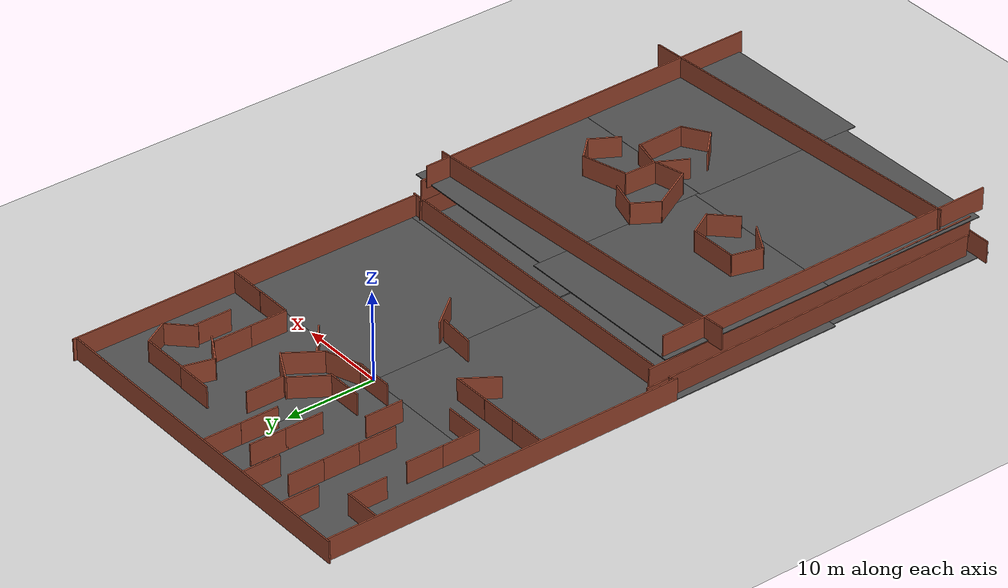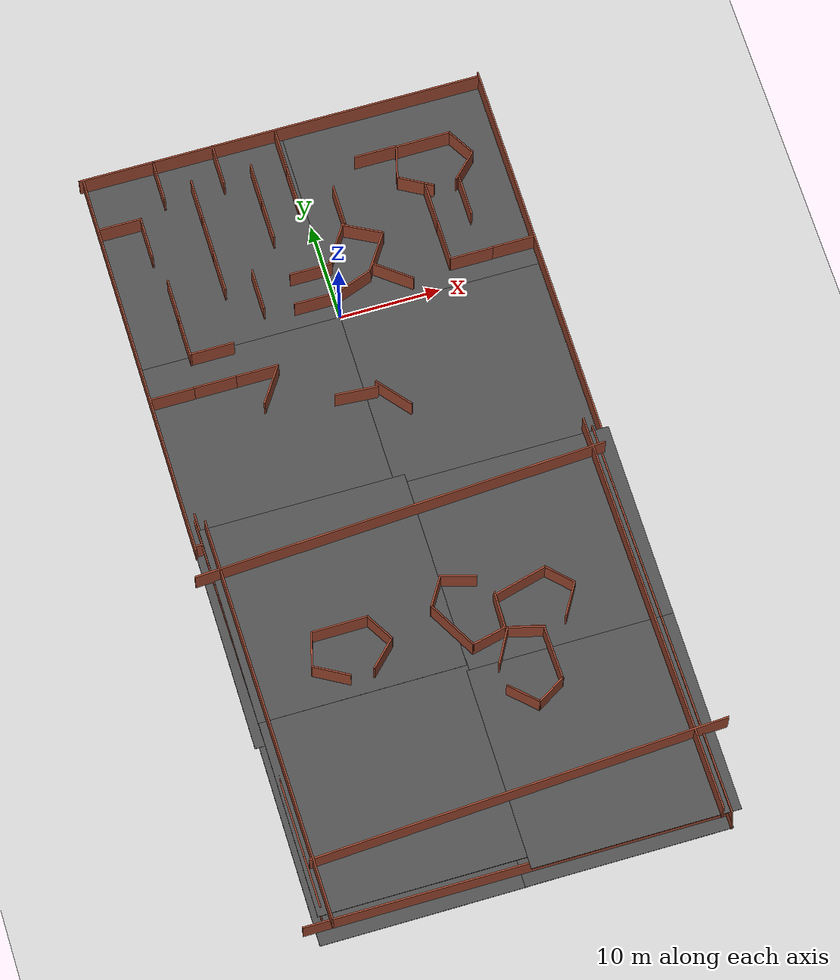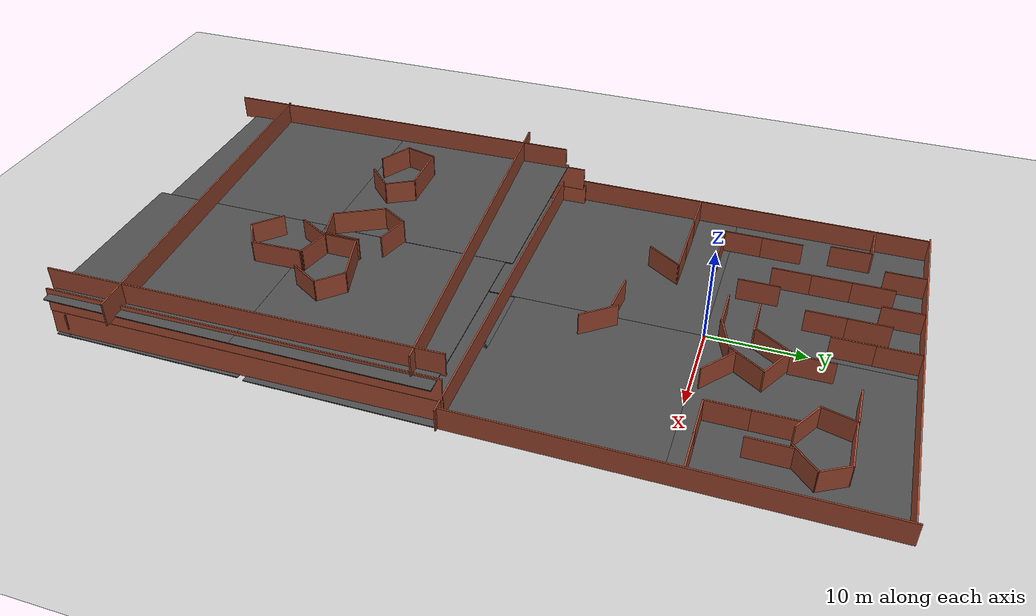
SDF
<sdf version="1.6">
 <world name="default">
  <light name="sun" type="directional">
   <pose>0 0 10 0 -0 0</pose>
   <diffuse>0.8 0.8 0.8 1</diffuse>
   <specular>0.2 0.2 0.2 1</specular>
   <attenuation>
    <range>1000</range>
    <constant>0.9</constant>
    <linear>0.01</linear>
    <quadratic>0.001</quadratic>
   </attenuation>
   <direction>-0.5 0.1 -0.9</direction>
  </light>
  <model name="ground_plane">
   <static>1</static>
   <link name="link">
    <collision name="collision">
     <geometry><plane><normal>0 0 1</normal><size>100 100</size></plane></geometry>
     <surface><friction><ode><mu>100</mu><mu2>50</mu2></ode></friction></surface>
    </collision>
    <visual name="visual">
     <cast_shadows>0</cast_shadows>
     <geometry><plane><normal>0 0 1</normal><size>100 100</size></plane></geometry>
     <material>
      <script><uri>file://media/materials/scripts/gazebo.material</uri><name>Gazebo/Grey</name></script>
     </material>
    </visual>
   </link>
  </model>
  <physics name="default_physics" default="0" type="ode">
   <max_step_size>0.001</max_step_size>
   <real_time_factor>1</real_time_factor>
   <real_time_update_rate>1000</real_time_update_rate>
  </physics>
  <scene><ambient>0.4 0.4 0.4 1</ambient><background>0.7 0.7 0.7 1</background><shadows>1</shadows></scene>
  <spherical_coordinates>
   <surface_model>EARTH_WGS84</surface_model>
   <latitude_deg>0</latitude_deg>
   <longitude_deg>0</longitude_deg>
   <elevation>0</elevation>
   <heading_deg>0</heading_deg>
  </spherical_coordinates>
  <model name="asphalt_plane">
   <static>1</static>
   <link name="link">
    <collision name="collision"><geometry><box><size>20 20 0.1</size></box></geometry></collision>
    <visual name="visual">
     <cast_shadows>0</cast_shadows>
     <geometry><box><size>20 20 0.1</size></box></geometry>
     <material>
      <script>
       <uri>model://asphalt_plane/materials/scripts</uri>
       <uri>model://asphalt_plane/materials/textures</uri>
       <name>vrc/asphalt</name>
      </script>
     </material>
    </visual>
   </link>
   <pose>10 10 0 0 -0 0</pose>
  </model>
  <model name="asphalt_plane_0">
   <static>1</static>
   <link name="link">
    <collision name="collision"><geometry><box><size>20 20 0.1</size></box></geometry></collision>
    <visual name="visual">
     <cast_shadows>0</cast_shadows>
     <geometry><box><size>20 20 0.1</size></box></geometry>
     <material>
      <script>
       <uri>model://asphalt_plane/materials/scripts</uri>
       <uri>model://asphalt_plane/materials/textures</uri>
       <name>vrc/asphalt</name>
      </script>
     </material>
    </visual>
   </link>
   <pose>-10 10 0 0 -0 0</pose>
  </model>
  <model name="asphalt_plane_1">
   <static>1</static>
   <link name="link">
    <collision name="collision"><geometry><box><size>20 20 0.1</size></box></geometry></collision>
    <visual name="visual">
     <cast_shadows>0</cast_shadows>
     <geometry><box><size>20 20 0.1</size></box></geometry>
     <material>
      <script>
       <uri>model://asphalt_plane/materials/scripts</uri>
       <uri>model://asphalt_plane/materials/textures</uri>
       <name>vrc/asphalt</name>
      </script>
     </material>
    </visual>
   </link>
   <pose>-10 -10 0 0 -0 0</pose>
  </model>
  <model name="asphalt_plane_2">
   <static>1</static>
   <link name="link">
    <collision name="collision"><geometry><box><size>20 20 0.1</size></box></geometry></collision>
    <visual name="visual">
     <cast_shadows>0</cast_shadows>
     <geometry><box><size>20 20 0.1</size></box></geometry>
     <material>
      <script>
       <uri>model://asphalt_plane/materials/scripts</uri>
       <uri>model://asphalt_plane/materials/textures</uri>
       <name>vrc/asphalt</name>
      </script>
     </material>
    </visual>
   </link>
   <pose>10 -10 0 0 -0 0</pose>
  </model>
  <model name="longwall">
   <pose>0.229981 -20.0786 0 0 -0 0</pose>
   <link name="Wall_0">
    <collision name="Wall_0_Collision">
     <geometry><box><size>40.5 0.15 2.5</size></box></geometry>
     <pose>0 0 1.25 0 -0 0</pose>
    </collision>
    <visual name="Wall_0_Visual">
     <pose>0 0 1.25 0 -0 0</pose>
     <geometry><box><size>40.5 0.15 2.5</size></box></geometry>
     <material>
      <script><uri>file://media/materials/scripts/gazebo.material</uri><name>Gazebo/Bricks</name></script>
      <ambient>1 1 1 1</ambient>
     </material>
    </visual>
    <pose>1e-06 0 0 0 -0 0</pose>
   </link>
   <static>1</static>
  </model>
  <model name="longwall_0">
   <pose>-20.0177 -0.255752 0 0 0 -1.57092</pose>
   <link name="Wall_0">
    <collision name="Wall_0_Collision">
     <geometry><box><size>40.5 0.15 2.5</size></box></geometry>
     <pose>0 0 1.25 0 -0 0</pose>
    </collision>
    <visual name="Wall_0_Visual">
     <pose>0 0 1.25 0 -0 0</pose>
     <geometry><box><size>40.5 0.15 2.5</size></box></geometry>
     <material>
      <script><uri>file://media/materials/scripts/gazebo.material</uri><name>Gazebo/Bricks</name></script>
      <ambient>1 1 1 1</ambient>
     </material>
    </visual>
    <pose>1e-06 0 0 0 -0 0</pose>
   </link>
   <static>1</static>
  </model>
  <model name="longwall_0_clone">
   <pose>20.1053 0.258056 0 0 0 -1.57092</pose>
   <link name="Wall_0">
    <collision name="Wall_0_Collision">
     <geometry><box><size>40.5 0.15 2.5</size></box></geometry>
     <pose>0 0 1.25 0 -0 0</pose>
    </collision>
    <visual name="Wall_0_Visual">
     <pose>0 0 1.25 0 -0 0</pose>
     <geometry><box><size>40.5 0.15 2.5</size></box></geometry>
     <material>
      <script><uri>file://media/materials/scripts/gazebo.material</uri><name>Gazebo/Bricks</name></script>
      <ambient>1 1 1 1</ambient>
     </material>
    </visual>
    <pose>1e-06 0 0 0 -0 0</pose>
   </link>
   <static>1</static>
  </model>
  <model name="longwall_clone">
   <pose>-0.214439 20.0862 0 0 -0 0</pose>
   <link name="Wall_0">
    <collision name="Wall_0_Collision">
     <geometry><box><size>40.5 0.15 2.5</size></box></geometry>
     <pose>0 0 1.25 0 -0 0</pose>
    </collision>
    <visual name="Wall_0_Visual">
     <pose>0 0 1.25 0 -0 0</pose>
     <geometry><box><size>40.5 0.15 2.5</size></box></geometry>
     <material>
      <script><uri>file://media/materials/scripts/gazebo.material</uri><name>Gazebo/Bricks</name></script>
      <ambient>1 1 1 1</ambient>
     </material>
    </visual>
    <pose>1e-06 0 0 0 -0 0</pose>
   </link>
   <static>1</static>
  </model>
  <model name="room1">
   <pose>13.1523 12.4323 0 0 -0 0</pose>
   <link name="Wall_11">
    <collision name="Wall_11_Collision">
     <geometry><box><size>3.25 0.15 2.5</size></box></geometry>
     <pose>0 0 1.25 0 -0 0</pose>
    </collision>
    <visual name="Wall_11_Visual">
     <pose>0 0 1.25 0 -0 0</pose>
     <geometry><box><size>3.25 0.15 2.5</size></box></geometry>
     <material>
      <script><uri>file://media/materials/scripts/gazebo.material</uri><name>Gazebo/Bricks</name></script>
      <ambient>1 1 1 1</ambient>
     </material>
    </visual>
    <pose>3.12132 1.19483 0 0 0 -1.0472</pose>
   </link>
   <link name="Wall_12">
    <collision name="Wall_12_Collision">
     <geometry><box><size>3.5 0.15 2.5</size></box></geometry>
     <pose>0 0 1.25 0 -0 0</pose>
    </collision>
    <visual name="Wall_12_Visual">
     <pose>0 0 1.25 0 -0 0</pose>
     <geometry><box><size>3.5 0.15 2.5</size></box></geometry>
     <material>
      <script><uri>file://media/materials/scripts/gazebo.material</uri><name>Gazebo/Bricks</name></script>
      <ambient>1 1 1 1</ambient>
     </material>
    </visual>
    <pose>2.71192 -1.33192 0 0 0 -2.35619</pose>
   </link>
   <link name="Wall_7">
    <collision name="Wall_7_Collision">
     <geometry><box><size>5.52935 0.15 2.5</size></box></geometry>
     <pose>0 0 1.25 0 -0 0</pose>
    </collision>
    <visual name="Wall_7_Visual">
     <pose>0 0 1.25 0 -0 0</pose>
     <geometry><box><size>5.52935 0.15 2.5</size></box></geometry>
     <material>
      <script><uri>file://media/materials/scripts/gazebo.material</uri><name>Gazebo/Bricks</name></script>
      <ambient>1 1 1 1</ambient>
     </material>
    </visual>
    <pose>-0.343285 2.51793 0 0 0 -3.13444</pose>
   </link>
   <link name="Wall_8">
    <collision name="Wall_8_Collision">
     <geometry><box><size>3.5 0.15 2.5</size></box></geometry>
     <pose>0 0 1.25 0 -0 0</pose>
    </collision>
    <visual name="Wall_8_Visual">
     <pose>0 0 1.25 0 -0 0</pose>
     <geometry><box><size>3.5 0.15 2.5</size></box></geometry>
     <material>
      <script><uri>file://media/materials/scripts/gazebo.material</uri><name>Gazebo/Bricks</name></script>
      <ambient>1 1 1 1</ambient>
     </material>
    </visual>
    <pose>-3.46641 0.880761 0 0 0 -1.8326</pose>
   </link>
   <link name="Wall_9">
    <collision name="Wall_9_Collision">
     <geometry><box><size>3.75 0.15 2.5</size></box></geometry>
     <pose>0 0 1.25 0 -0 0</pose>
    </collision>
    <visual name="Wall_9_Visual">
     <pose>0 0 1.25 0 -0 0</pose>
     <geometry><box><size>3.75 0.15 2.5</size></box></geometry>
     <material>
      <script><uri>file://media/materials/scripts/gazebo.material</uri><name>Gazebo/Bricks</name></script>
      <ambient>1 1 1 1</ambient>
     </material>
    </visual>
    <pose>-2.34109 -1.63716 0 0 0 -0.523599</pose>
   </link>
   <static>1</static>
  </model>
  <model name="worlds_1">
   <pose>3 10.4406 0 0 -0 0</pose>
   <link name="Wall_0">
    <collision name="Wall_0_Collision">
     <geometry><box><size>4.25 0.15 2.5</size></box></geometry>
     <pose>0 0 1.25 0 -0 0</pose>
    </collision>
    <visual name="Wall_0_Visual">
     <pose>0 0 1.25 0 -0 0</pose>
     <geometry><box><size>4.25 0.15 2.5</size></box></geometry>
     <material>
      <script><uri>file://media/materials/scripts/gazebo.material</uri><name>Gazebo/Bricks</name></script>
      <ambient>1 1 1 1</ambient>
     </material>
    </visual>
    <pose>0 -0 0 0 -0 1.5708</pose>
   </link>
   <static>1</static>
  </model>
  <model name="worlds_2">
   <pose>4.42901 7.33195 0 0 -0 1.08023</pose>
   <link name="Wall_0">
    <collision name="Wall_0_Collision">
     <geometry><box><size>4.25 0.15 2.5</size></box></geometry>
     <pose>0 0 1.25 0 -0 0</pose>
    </collision>
    <visual name="Wall_0_Visual">
     <pose>0 0 1.25 0 -0 0</pose>
     <geometry><box><size>4.25 0.15 2.5</size></box></geometry>
     <material>
      <script><uri>file://media/materials/scripts/gazebo.material</uri><name>Gazebo/Bricks</name></script>
      <ambient>1 1 1 1</ambient>
     </material>
    </visual>
    <pose>0 -0 0 0 -0 1.5708</pose>
   </link>
   <static>1</static>
  </model>
  <model name="worlds_0_clone">
   <pose>-1 -9 0 0 -0 1.49697</pose>
   <link name="Wall_0">
    <collision name="Wall_0_Collision">
     <geometry><box><size>4.25 0.15 2.5</size></box></geometry>
     <pose>0 0 1.25 0 -0 0</pose>
    </collision>
    <visual name="Wall_0_Visual">
     <pose>0 0 1.25 0 -0 0</pose>
     <geometry><box><size>4.25 0.15 2.5</size></box></geometry>
     <material>
      <script><uri>file://media/materials/scripts/gazebo.material</uri><name>Gazebo/Bricks</name></script>
      <ambient>1 1 1 1</ambient>
     </material>
    </visual>
    <pose>0 -0 0 0 -0 1.5708</pose>
   </link>
   <static>1</static>
  </model>
  <model name="worlds_2_clone">
   <pose>2.34689 -10.1873 0 0 -0 0.67691</pose>
   <link name="Wall_0">
    <collision name="Wall_0_Collision">
     <geometry><box><size>4.25 0.15 2.5</size></box></geometry>
     <pose>0 0 1.25 0 -0 0</pose>
    </collision>
    <visual name="Wall_0_Visual">
     <pose>0 0 1.25 0 -0 0</pose>
     <geometry><box><size>4.25 0.15 2.5</size></box></geometry>
     <material>
      <script><uri>file://media/materials/scripts/gazebo.material</uri><name>Gazebo/Bricks</name></script>
      <ambient>1 1 1 1</ambient>
     </material>
    </visual>
    <pose>0 -0 0 0 -0 1.5708</pose>
   </link>
   <static>1</static>
  </model>
  <model name="worlds_1_clone">
   <pose>11.6021 8.07399 0 0 -0 0</pose>
   <link name="Wall_0">
    <collision name="Wall_0_Collision">
     <geometry><box><size>4.25 0.15 2.5</size></box></geometry>
     <pose>0 0 1.25 0 -0 0</pose>
    </collision>
    <visual name="Wall_0_Visual">
     <pose>0 0 1.25 0 -0 0</pose>
     <geometry><box><size>4.25 0.15 2.5</size></box></geometry>
     <material>
      <script><uri>file://media/materials/scripts/gazebo.material</uri><name>Gazebo/Bricks</name></script>
      <ambient>1 1 1 1</ambient>
     </material>
    </visual>
    <pose>0 -0 0 0 -0 1.5708</pose>
   </link>
   <static>1</static>
  </model>
  <model name="worlds_1_clone_0">
   <pose>11.6134 3.89135 0 0 -0 0</pose>
   <link name="Wall_0">
    <collision name="Wall_0_Collision">
     <geometry><box><size>4.25 0.15 2.5</size></box></geometry>
     <pose>0 0 1.25 0 -0 0</pose>
    </collision>
    <visual name="Wall_0_Visual">
     <pose>0 0 1.25 0 -0 0</pose>
     <geometry><box><size>4.25 0.15 2.5</size></box></geometry>
     <material>
      <script><uri>file://media/materials/scripts/gazebo.material</uri><name>Gazebo/Bricks</name></script>
      <ambient>1 1 1 1</ambient>
     </material>
    </visual>
    <pose>0 -0 0 0 -0 1.5708</pose>
   </link>
   <static>1</static>
  </model>
  <model name="worlds_1_clone_0_clone">
   <pose>13.736 1.79456 0 0 0 -1.57092</pose>
   <link name="Wall_0">
    <collision name="Wall_0_Collision">
     <geometry><box><size>4.25 0.15 2.5</size></box></geometry>
     <pose>0 0 1.25 0 -0 0</pose>
    </collision>
    <visual name="Wall_0_Visual">
     <pose>0 0 1.25 0 -0 0</pose>
     <geometry><box><size>4.25 0.15 2.5</size></box></geometry>
     <material>
      <script><uri>file://media/materials/scripts/gazebo.material</uri><name>Gazebo/Bricks</name></script>
      <ambient>1 1 1 1</ambient>
     </material>
    </visual>
    <pose>0 -0 0 0 -0 1.5708</pose>
   </link>
   <static>1</static>
  </model>
  <model name="worlds_1_clone_0_clone_clone">
   <pose>17.9203 1.82357 0 0 0 -1.57092</pose>
   <link name="Wall_0">
    <collision name="Wall_0_Collision">
     <geometry><box><size>4.25 0.15 2.5</size></box></geometry>
     <pose>0 0 1.25 0 -0 0</pose>
    </collision>
    <visual name="Wall_0_Visual">
     <pose>0 0 1.25 0 -0 0</pose>
     <geometry><box><size>4.25 0.15 2.5</size></box></geometry>
     <material>
      <script><uri>file://media/materials/scripts/gazebo.material</uri><name>Gazebo/Bricks</name></script>
      <ambient>1 1 1 1</ambient>
     </material>
    </visual>
    <pose>0 -0 0 0 -0 1.5708</pose>
   </link>
   <static>1</static>
  </model>
  <model name="worlds_1_clone_0_clone_clone_0">
   <pose>8 15 0 0 0 -1.57092</pose>
   <link name="Wall_0">
    <collision name="Wall_0_Collision">
     <geometry><box><size>4.25 0.15 2.5</size></box></geometry>
     <pose>0 0 1.25 0 -0 0</pose>
    </collision>
    <visual name="Wall_0_Visual">
     <pose>0 0 1.25 0 -0 0</pose>
     <geometry><box><size>4.25 0.15 2.5</size></box></geometry>
     <material>
      <script><uri>file://media/materials/scripts/gazebo.material</uri><name>Gazebo/Bricks</name></script>
      <ambient>1 1 1 1</ambient>
     </material>
    </visual>
    <pose>0 -0 0 0 -0 1.5708</pose>
   </link>
   <static>1</static>
  </model>
  <model name="worlds_1_clone_0_clone_clone_0_clone">
   <pose>-17.8162 14.4688 0 0 0 -1.57092</pose>
   <link name="Wall_0">
    <collision name="Wall_0_Collision">
     <geometry><box><size>4.25 0.15 2.5</size></box></geometry>
     <pose>0 0 1.25 0 -0 0</pose>
    </collision>
    <visual name="Wall_0_Visual">
     <pose>0 0 1.25 0 -0 0</pose>
     <geometry><box><size>4.25 0.15 2.5</size></box></geometry>
     <material>
      <script><uri>file://media/materials/scripts/gazebo.material</uri><name>Gazebo/Bricks</name></script>
      <ambient>1 1 1 1</ambient>
     </material>
    </visual>
    <pose>0 -0 0 0 -0 1.5708</pose>
   </link>
   <static>1</static>
  </model>
  <model name="worlds_1_clone_1">
   <pose>-13 18 0 0 -0 0</pose>
   <link name="Wall_0">
    <collision name="Wall_0_Collision">
     <geometry><box><size>4.25 0.15 2.5</size></box></geometry>
     <pose>0 0 1.25 0 -0 0</pose>
    </collision>
    <visual name="Wall_0_Visual">
     <pose>0 0 1.25 0 -0 0</pose>
     <geometry><box><size>4.25 0.15 2.5</size></box></geometry>
     <material>
      <script><uri>file://media/materials/scripts/gazebo.material</uri><name>Gazebo/Bricks</name></script>
      <ambient>1 1 1 1</ambient>
     </material>
    </visual>
    <pose>0 -0 0 0 -0 1.5708</pose>
   </link>
   <static>1</static>
  </model>
  <model name="worlds_1_clone_1_clone">
   <pose>-15.7734 12.3225 0 0 -0 0</pose>
   <link name="Wall_0">
    <collision name="Wall_0_Collision">
     <geometry><box><size>4.25 0.15 2.5</size></box></geometry>
     <pose>0 0 1.25 0 -0 0</pose>
    </collision>
    <visual name="Wall_0_Visual">
     <pose>0 0 1.25 0 -0 0</pose>
     <geometry><box><size>4.25 0.15 2.5</size></box></geometry>
     <material>
      <script><uri>file://media/materials/scripts/gazebo.material</uri><name>Gazebo/Bricks</name></script>
      <ambient>1 1 1 1</ambient>
     </material>
    </visual>
    <pose>0 -0 0 0 -0 1.5708</pose>
   </link>
   <static>1</static>
  </model>
  <model name="worlds_1_clone_1_clone_clone">
   <pose>-15.0638 5.287 0 0 -0 0</pose>
   <link name="Wall_0">
    <collision name="Wall_0_Collision">
     <geometry><box><size>4.25 0.15 2.5</size></box></geometry>
     <pose>0 0 1.25 0 -0 0</pose>
    </collision>
    <visual name="Wall_0_Visual">
     <pose>0 0 1.25 0 -0 0</pose>
     <geometry><box><size>4.25 0.15 2.5</size></box></geometry>
     <material>
      <script><uri>file://media/materials/scripts/gazebo.material</uri><name>Gazebo/Bricks</name></script>
      <ambient>1 1 1 1</ambient>
     </material>
    </visual>
    <pose>0 -0 0 0 -0 1.5708</pose>
   </link>
   <static>1</static>
  </model>
  <model name="worlds_1_clone_1_clone_clone_0">
   <pose>-15.0769 1.18275 0 0 -0 0</pose>
   <link name="Wall_0">
    <collision name="Wall_0_Collision">
     <geometry><box><size>4.25 0.15 2.5</size></box></geometry>
     <pose>0 0 1.25 0 -0 0</pose>
    </collision>
    <visual name="Wall_0_Visual">
     <pose>0 0 1.25 0 -0 0</pose>
     <geometry><box><size>4.25 0.15 2.5</size></box></geometry>
     <material>
      <script><uri>file://media/materials/scripts/gazebo.material</uri><name>Gazebo/Bricks</name></script>
      <ambient>1 1 1 1</ambient>
     </material>
    </visual>
    <pose>0 -0 0 0 -0 1.5708</pose>
   </link>
   <static>1</static>
  </model>
  <model name="worlds_1_clone_0_clone_clone_0_clone_clone">
   <pose>-17.8054 -4.32089 0 0 0 -1.57092</pose>
   <link name="Wall_0">
    <collision name="Wall_0_Collision">
     <geometry><box><size>4.25 0.15 2.5</size></box></geometry>
     <pose>0 0 1.25 0 -0 0</pose>
    </collision>
    <visual name="Wall_0_Visual">
     <pose>0 0 1.25 0 -0 0</pose>
     <geometry><box><size>4.25 0.15 2.5</size></box></geometry>
     <material>
      <script><uri>file://media/materials/scripts/gazebo.material</uri><name>Gazebo/Bricks</name></script>
      <ambient>1 1 1 1</ambient>
     </material>
    </visual>
    <pose>0 -0 0 0 -0 1.5708</pose>
   </link>
   <static>1</static>
  </model>
  <model name="worlds_1_clone_0_clone_clone_0_clone_clone_0">
   <pose>-13.6699 -4.29855 0 0 0 -1.57092</pose>
   <link name="Wall_0">
    <collision name="Wall_0_Collision">
     <geometry><box><size>4.25 0.15 2.5</size></box></geometry>
     <pose>0 0 1.25 0 -0 0</pose>
    </collision>
    <visual name="Wall_0_Visual">
     <pose>0 0 1.25 0 -0 0</pose>
     <geometry><box><size>4.25 0.15 2.5</size></box></geometry>
     <material>
      <script><uri>file://media/materials/scripts/gazebo.material</uri><name>Gazebo/Bricks</name></script>
      <ambient>1 1 1 1</ambient>
     </material>
    </visual>
    <pose>0 -0 0 0 -0 1.5708</pose>
   </link>
   <static>1</static>
  </model>
  <model name="worlds_1_clone_0_clone_clone_0_clone_clone_1">
   <pose>-9.47339 -4.28892 0 0 0 -1.57092</pose>
   <link name="Wall_0">
    <collision name="Wall_0_Collision">
     <geometry><box><size>4.25 0.15 2.5</size></box></geometry>
     <pose>0 0 1.25 0 -0 0</pose>
    </collision>
    <visual name="Wall_0_Visual">
     <pose>0 0 1.25 0 -0 0</pose>
     <geometry><box><size>4.25 0.15 2.5</size></box></geometry>
     <material>
      <script><uri>file://media/materials/scripts/gazebo.material</uri><name>Gazebo/Bricks</name></script>
      <ambient>1 1 1 1</ambient>
     </material>
    </visual>
    <pose>0 -0 0 0 -0 1.5708</pose>
   </link>
   <static>1</static>
  </model>
  <model name="worlds_1_clone_1_clone_0">
   <pose>-0.708445 17.9147 0 0 -0 0</pose>
   <link name="Wall_0">
    <collision name="Wall_0_Collision">
     <geometry><box><size>4.25 0.15 2.5</size></box></geometry>
     <pose>0 0 1.25 0 -0 0</pose>
    </collision>
    <visual name="Wall_0_Visual">
     <pose>0 0 1.25 0 -0 0</pose>
     <geometry><box><size>4.25 0.15 2.5</size></box></geometry>
     <material>
      <script><uri>file://media/materials/scripts/gazebo.material</uri><name>Gazebo/Bricks</name></script>
      <ambient>1 1 1 1</ambient>
     </material>
    </visual>
    <pose>0 -0 0 0 -0 1.5708</pose>
   </link>
   <static>1</static>
  </model>
  <model name="worlds_1_clone_1_clone_1">
   <pose>-0.716318 13.714 0 0 -0 0</pose>
   <link name="Wall_0">
    <collision name="Wall_0_Collision">
     <geometry><box><size>4.25 0.15 2.5</size></box></geometry>
     <pose>0 0 1.25 0 -0 0</pose>
    </collision>
    <visual name="Wall_0_Visual">
     <pose>0 0 1.25 0 -0 0</pose>
     <geometry><box><size>4.25 0.15 2.5</size></box></geometry>
     <material>
      <script><uri>file://media/materials/scripts/gazebo.material</uri><name>Gazebo/Bricks</name></script>
      <ambient>1 1 1 1</ambient>
     </material>
    </visual>
    <pose>0 -0 0 0 -0 1.5708</pose>
   </link>
   <static>1</static>
  </model>
  <model name="worlds_1_clone_1_clone_2">
   <pose>-7 18 0 0 -0 0</pose>
   <link name="Wall_0">
    <collision name="Wall_0_Collision">
     <geometry><box><size>4.25 0.15 2.5</size></box></geometry>
     <pose>0 0 1.25 0 -0 0</pose>
    </collision>
    <visual name="Wall_0_Visual">
     <pose>0 0 1.25 0 -0 0</pose>
     <geometry><box><size>4.25 0.15 2.5</size></box></geometry>
     <material>
      <script><uri>file://media/materials/scripts/gazebo.material</uri><name>Gazebo/Bricks</name></script>
      <ambient>1 1 1 1</ambient>
     </material>
    </visual>
    <pose>0 -0 0 0 -0 1.5708</pose>
   </link>
   <static>1</static>
  </model>
  <model name="worlds_1_clone_1_clone_3">
   <pose>-10 15 0 0 -0 0</pose>
   <link name="Wall_0">
    <collision name="Wall_0_Collision">
     <geometry><box><size>4.25 0.15 2.5</size></box></geometry>
     <pose>0 0 1.25 0 -0 0</pose>
    </collision>
    <visual name="Wall_0_Visual">
     <pose>0 0 1.25 0 -0 0</pose>
     <geometry><box><size>4.25 0.15 2.5</size></box></geometry>
     <material>
      <script><uri>file://media/materials/scripts/gazebo.material</uri><name>Gazebo/Bricks</name></script>
      <ambient>1 1 1 1</ambient>
     </material>
    </visual>
    <pose>0 -0 0 0 -0 1.5708</pose>
   </link>
   <static>1</static>
  </model>
  <model name="worlds_1_clone_1_clone_4">
   <pose>-10 11 0 0 -0 0</pose>
   <link name="Wall_0">
    <collision name="Wall_0_Collision">
     <geometry><box><size>4.25 0.15 2.5</size></box></geometry>
     <pose>0 0 1.25 0 -0 0</pose>
    </collision>
    <visual name="Wall_0_Visual">
     <pose>0 0 1.25 0 -0 0</pose>
     <geometry><box><size>4.25 0.15 2.5</size></box></geometry>
     <material>
      <script><uri>file://media/materials/scripts/gazebo.material</uri><name>Gazebo/Bricks</name></script>
      <ambient>1 1 1 1</ambient>
     </material>
    </visual>
    <pose>0 -0 0 0 -0 1.5708</pose>
   </link>
   <static>1</static>
  </model>
  <model name="worlds_1_clone_1_clone_5">
   <pose>-4 15 0 0 -0 0</pose>
   <link name="Wall_0">
    <collision name="Wall_0_Collision">
     <geometry><box><size>4.25 0.15 2.5</size></box></geometry>
     <pose>0 0 1.25 0 -0 0</pose>
    </collision>
    <visual name="Wall_0_Visual">
     <pose>0 0 1.25 0 -0 0</pose>
     <geometry><box><size>4.25 0.15 2.5</size></box></geometry>
     <material>
      <script><uri>file://media/materials/scripts/gazebo.material</uri><name>Gazebo/Bricks</name></script>
      <ambient>1 1 1 1</ambient>
     </material>
    </visual>
    <pose>0 -0 0 0 -0 1.5708</pose>
   </link>
   <static>1</static>
  </model>
  <model name="worlds_1_clone_1_clone_6">
   <pose>-4 11 0 0 -0 0</pose>
   <link name="Wall_0">
    <collision name="Wall_0_Collision">
     <geometry><box><size>4.25 0.15 2.5</size></box></geometry>
     <pose>0 0 1.25 0 -0 0</pose>
    </collision>
    <visual name="Wall_0_Visual">
     <pose>0 0 1.25 0 -0 0</pose>
     <geometry><box><size>4.25 0.15 2.5</size></box></geometry>
     <material>
      <script><uri>file://media/materials/scripts/gazebo.material</uri><name>Gazebo/Bricks</name></script>
      <ambient>1 1 1 1</ambient>
     </material>
    </visual>
    <pose>0 -0 0 0 -0 1.5708</pose>
   </link>
   <static>1</static>
  </model>
  <model name="worlds_1_clone_1_clone_7">
   <pose>-10 7 0 0 -0 0</pose>
   <link name="Wall_0">
    <collision name="Wall_0_Collision">
     <geometry><box><size>4.25 0.15 2.5</size></box></geometry>
     <pose>0 0 1.25 0 -0 0</pose>
    </collision>
    <visual name="Wall_0_Visual">
     <pose>0 0 1.25 0 -0 0</pose>
     <geometry><box><size>4.25 0.15 2.5</size></box></geometry>
     <material>
      <script><uri>file://media/materials/scripts/gazebo.material</uri><name>Gazebo/Bricks</name></script>
      <ambient>1 1 1 1</ambient>
     </material>
    </visual>
    <pose>0 -0 0 0 -0 1.5708</pose>
   </link>
   <static>1</static>
  </model>
  <model name="worlds_1_clone_0_clone_clone_0_clone_clone_0_clone">
   <pose>-12.8938 -0.809745 0 0 0 -1.57092</pose>
   <link name="Wall_0">
    <collision name="Wall_0_Collision">
     <geometry><box><size>4.25 0.15 2.5</size></box></geometry>
     <pose>0 0 1.25 0 -0 0</pose>
    </collision>
    <visual name="Wall_0_Visual">
     <pose>0 0 1.25 0 -0 0</pose>
     <geometry><box><size>4.25 0.15 2.5</size></box></geometry>
     <material>
      <script><uri>file://media/materials/scripts/gazebo.material</uri><name>Gazebo/Bricks</name></script>
      <ambient>1 1 1 1</ambient>
     </material>
    </visual>
    <pose>0 -0 0 0 -0 1.5708</pose>
   </link>
   <static>1</static>
  </model>
  <model name="worlds_1_clone_1_clone_7_clone">
   <pose>-7 4 0 0 -0 0</pose>
   <link name="Wall_0">
    <collision name="Wall_0_Collision">
     <geometry><box><size>4.25 0.15 2.5</size></box></geometry>
     <pose>0 0 1.25 0 -0 0</pose>
    </collision>
    <visual name="Wall_0_Visual">
     <pose>0 0 1.25 0 -0 0</pose>
     <geometry><box><size>4.25 0.15 2.5</size></box></geometry>
     <material>
      <script><uri>file://media/materials/scripts/gazebo.material</uri><name>Gazebo/Bricks</name></script>
      <ambient>1 1 1 1</ambient>
     </material>
    </visual>
    <pose>0 -0 0 0 -0 1.5708</pose>
   </link>
   <static>1</static>
  </model>
  <model name="worlds_1_clone_1_clone_7_clone_clone">
   <pose>1.48825 6.4581 0 0 0 -0.589381</pose>
   <link name="Wall_0">
    <collision name="Wall_0_Collision">
     <geometry><box><size>4.25 0.15 2.5</size></box></geometry>
     <pose>0 0 1.25 0 -0 0</pose>
    </collision>
    <visual name="Wall_0_Visual">
     <pose>0 0 1.25 0 -0 0</pose>
     <geometry><box><size>4.25 0.15 2.5</size></box></geometry>
     <material>
      <script><uri>file://media/materials/scripts/gazebo.material</uri><name>Gazebo/Bricks</name></script>
      <ambient>1 1 1 1</ambient>
     </material>
    </visual>
    <pose>0 -0 0 0 -0 1.5708</pose>
   </link>
   <static>1</static>
  </model>
  <model name="worlds_1_clone_1_clone_7_clone_clone_clone">
   <pose>5 4.58681 0 0 0 -0.589381</pose>
   <link name="Wall_0">
    <collision name="Wall_0_Collision">
     <geometry><box><size>4.25 0.15 2.5</size></box></geometry>
     <pose>0 0 1.25 0 -0 0</pose>
    </collision>
    <visual name="Wall_0_Visual">
     <pose>0 0 1.25 0 -0 0</pose>
     <geometry><box><size>4.25 0.15 2.5</size></box></geometry>
     <material>
      <script><uri>file://media/materials/scripts/gazebo.material</uri><name>Gazebo/Bricks</name></script>
      <ambient>1 1 1 1</ambient>
     </material>
    </visual>
    <pose>0 -0 0 0 -0 1.5708</pose>
   </link>
   <static>1</static>
  </model>
  <model name="worlds_1_clone_0_clone_clone_0_clone_clone_0_clone_clone">
   <pose>-1.54431 4.60476 0 0 0 -1.57092</pose>
   <link name="Wall_0">
    <collision name="Wall_0_Collision">
     <geometry><box><size>4.25 0.15 2.5</size></box></geometry>
     <pose>0 0 1.25 0 -0 0</pose>
    </collision>
    <visual name="Wall_0_Visual">
     <pose>0 0 1.25 0 -0 0</pose>
     <geometry><box><size>4.25 0.15 2.5</size></box></geometry>
     <material>
      <script><uri>file://media/materials/scripts/gazebo.material</uri><name>Gazebo/Bricks</name></script>
      <ambient>1 1 1 1</ambient>
     </material>
    </visual>
    <pose>0 -0 0 0 -0 1.5708</pose>
   </link>
   <static>1</static>
  </model>
  <model name="worlds_1_clone_0_clone_clone_0_clone_clone_0_clone_clone_0">
   <pose>1.87166 2.0906 0 0 0 -1.22347</pose>
   <link name="Wall_0">
    <collision name="Wall_0_Collision">
     <geometry><box><size>4.25 0.15 2.5</size></box></geometry>
     <pose>0 0 1.25 0 -0 0</pose>
    </collision>
    <visual name="Wall_0_Visual">
     <pose>0 0 1.25 0 -0 0</pose>
     <geometry><box><size>4.25 0.15 2.5</size></box></geometry>
     <material>
      <script><uri>file://media/materials/scripts/gazebo.material</uri><name>Gazebo/Bricks</name></script>
      <ambient>1 1 1 1</ambient>
     </material>
    </visual>
    <pose>0 -0 0 0 -0 1.5708</pose>
   </link>
   <static>1</static>
  </model>
  <model name="worlds_1_clone_0_clone_clone_0_clone_clone_0_clone_clone_clone">
   <pose>-2 1.45154 0 0 0 -1.57092</pose>
   <link name="Wall_0">
    <collision name="Wall_0_Collision">
     <geometry><box><size>4.25 0.15 2.5</size></box></geometry>
     <pose>0 0 1.25 0 -0 0</pose>
    </collision>
    <visual name="Wall_0_Visual">
     <pose>0 0 1.25 0 -0 0</pose>
     <geometry><box><size>4.25 0.15 2.5</size></box></geometry>
     <material>
      <script><uri>file://media/materials/scripts/gazebo.material</uri><name>Gazebo/Bricks</name></script>
      <ambient>1 1 1 1</ambient>
     </material>
    </visual>
    <pose>0 -0 0 0 -0 1.5708</pose>
   </link>
   <static>1</static>
  </model>
  <model name="worlds_1_clone_1_clone_7_clone_clone_0">
   <pose>6.00131 2.13117 0 0 -0 0.90029</pose>
   <link name="Wall_0">
    <collision name="Wall_0_Collision">
     <geometry><box><size>4.25 0.15 2.5</size></box></geometry>
     <pose>0 0 1.25 0 -0 0</pose>
    </collision>
    <visual name="Wall_0_Visual">
     <pose>0 0 1.25 0 -0 0</pose>
     <geometry><box><size>4.25 0.15 2.5</size></box></geometry>
     <material>
      <script><uri>file://media/materials/scripts/gazebo.material</uri><name>Gazebo/Bricks</name></script>
      <ambient>1 1 1 1</ambient>
     </material>
    </visual>
    <pose>0 -0 0 0 -0 1.5708</pose>
   </link>
   <static>1</static>
  </model>
  <model name="worlds_1_clone_1_clone_7_clone_clone_clone_0">
   <pose>-8.55218 -6 0 0 0 -0.589381</pose>
   <link name="Wall_0">
    <collision name="Wall_0_Collision">
     <geometry><box><size>4.25 0.15 2.5</size></box></geometry>
     <pose>0 0 1.25 0 -0 0</pose>
    </collision>
    <visual name="Wall_0_Visual">
     <pose>0 0 1.25 0 -0 0</pose>
     <geometry><box><size>4.25 0.15 2.5</size></box></geometry>
     <material>
      <script><uri>file://media/materials/scripts/gazebo.material</uri><name>Gazebo/Bricks</name></script>
      <ambient>1 1 1 1</ambient>
     </material>
    </visual>
    <pose>0 -0 0 0 -0 1.5708</pose>
   </link>
   <static>1</static>
  </model>
  <model name="worlds_1_clone_clone">
   <pose>15 8 0 0 -0 0</pose>
   <link name="Wall_0">
    <collision name="Wall_0_Collision">
     <geometry><box><size>4.25 0.15 2.5</size></box></geometry>
     <pose>0 0 1.25 0 -0 0</pose>
    </collision>
    <visual name="Wall_0_Visual">
     <pose>0 0 1.25 0 -0 0</pose>
     <geometry><box><size>4.25 0.15 2.5</size></box></geometry>
     <material>
      <script><uri>file://media/materials/scripts/gazebo.material</uri><name>Gazebo/Bricks</name></script>
      <ambient>1 1 1 1</ambient>
     </material>
    </visual>
    <pose>0 -0 0 0 -0 1.5708</pose>
   </link>
   <static>1</static>
  </model>
  <gravity>0 0 -9.8</gravity>
  <magnetic_field>6e-06 2.3e-05 -4.2e-05</magnetic_field>
  <atmosphere type="adiabatic"/>
  <model name="asphalt_plane_1_clone">
   <static>1</static>
   <link name="link">
    <collision name="collision"><geometry><box><size>20 20 0.1</size></box></geometry></collision>
    <visual name="visual">
     <cast_shadows>0</cast_shadows>
     <geometry><box><size>20 20 0.1</size></box></geometry>
     <material>
      <script>
       <uri>model://asphalt_plane/materials/scripts</uri>
       <uri>model://asphalt_plane/materials/textures</uri>
       <name>vrc/asphalt</name>
      </script>
     </material>
    </visual>
   </link>
   <pose>-10.0043 -30.1797 0 0 -0 0</pose>
  </model>
  <model name="asphalt_plane_1_clone_0">
   <static>1</static>
   <link name="link">
    <collision name="collision"><geometry><box><size>20 20 0.1</size></box></geometry></collision>
    <visual name="visual">
     <cast_shadows>0</cast_shadows>
     <geometry><box><size>20 20 0.1</size></box></geometry>
     <material>
      <script>
       <uri>model://asphalt_plane/materials/scripts</uri>
       <uri>model://asphalt_plane/materials/textures</uri>
       <name>vrc/asphalt</name>
      </script>
     </material>
    </visual>
   </link>
   <pose>10.3817 -30.3235 4.59 0 -0 0</pose>
  </model>
  <model name="asphalt_plane_1_clone_1">
   <static>1</static>
   <link name="link">
    <collision name="collision"><geometry><box><size>20 20 0.1</size></box></geometry></collision>
    <visual name="visual">
     <cast_shadows>0</cast_shadows>
     <geometry><box><size>20 20 0.1</size></box></geometry>
     <material>
      <script>
       <uri>model://asphalt_plane/materials/scripts</uri>
       <uri>model://asphalt_plane/materials/textures</uri>
       <name>vrc/asphalt</name>
      </script>
     </material>
    </visual>
   </link>
   <pose>-9.60593 -50.1848 0 0 -0 0</pose>
  </model>
  <model name="asphalt_plane_1_clone_2">
   <static>1</static>
   <link name="link">
    <collision name="collision"><geometry><box><size>20 20 0.1</size></box></geometry></collision>
    <visual name="visual">
     <cast_shadows>0</cast_shadows>
     <geometry><box><size>20 20 0.1</size></box></geometry>
     <material>
      <script>
       <uri>model://asphalt_plane/materials/scripts</uri>
       <uri>model://asphalt_plane/materials/textures</uri>
       <name>vrc/asphalt</name>
      </script>
     </material>
    </visual>
   </link>
   <pose>10.377 -50.0785 4.59498 0 -0 0</pose>
  </model>
  <model name="longwall_clone_0">
   <pose>-0.553597 -58.8151 0 0 -0 0</pose>
   <link name="Wall_0">
    <collision name="Wall_0_Collision">
     <geometry><box><size>40.5 0.15 2.5</size></box></geometry>
     <pose>0 0 1.25 0 -0 0</pose>
    </collision>
    <visual name="Wall_0_Visual">
     <pose>0 0 1.25 0 -0 0</pose>
     <geometry><box><size>40.5 0.15 2.5</size></box></geometry>
     <material>
      <script><uri>file://media/materials/scripts/gazebo.material</uri><name>Gazebo/Bricks</name></script>
      <ambient>1 1 1 1</ambient>
     </material>
    </visual>
    <pose>1e-06 0 0 0 -0 0</pose>
   </link>
   <static>1</static>
  </model>
  <model name="longwall_clone_0_clone">
   <pose>19.4374 -40.0362 0 0.056872 -0.008866 -1.5596</pose>
   <link name="Wall_0">
    <collision name="Wall_0_Collision">
     <geometry><box><size>40.5 0.15 2.5</size></box></geometry>
     <pose>0 0 1.25 0 -0 0</pose>
    </collision>
    <visual name="Wall_0_Visual">
     <pose>0 0 1.25 0 -0 0</pose>
     <geometry><box><size>40.5 0.15 2.5</size></box></geometry>
     <material>
      <script><uri>file://media/materials/scripts/gazebo.material</uri><name>Gazebo/Bricks</name></script>
      <ambient>1 1 1 1</ambient>
     </material>
    </visual>
    <pose>1e-06 0 0 0 -0 0</pose>
   </link>
   <static>1</static>
  </model>
  <model name="longwall_clone_0_clone_clone">
   <pose>19.2715 -40.1241 2.50451 0.056872 -0.008866 -1.5596</pose>
   <link name="Wall_0">
    <collision name="Wall_0_Collision">
     <geometry><box><size>40.5 0.15 2.5</size></box></geometry>
     <pose>0 0 1.25 0 -0 0</pose>
    </collision>
    <visual name="Wall_0_Visual">
     <pose>0 0 1.25 0 -0 0</pose>
     <geometry><box><size>40.5 0.15 2.5</size></box></geometry>
     <material>
      <script><uri>file://media/materials/scripts/gazebo.material</uri><name>Gazebo/Bricks</name></script>
      <ambient>1 1 1 1</ambient>
     </material>
    </visual>
    <pose>1e-06 0 0 0 -0 0</pose>
   </link>
   <static>1</static>
  </model>
  <model name="longwall_clone_0_clone_clone_0">
   <pose>18.21 -40.0771 4.47897 0 0 -1.5596</pose>
   <link name="Wall_0">
    <collision name="Wall_0_Collision">
     <geometry><box><size>40.5 0.15 2.5</size></box></geometry>
     <pose>0 0 1.25 0 -0 0</pose>
    </collision>
    <visual name="Wall_0_Visual">
     <pose>0 0 1.25 0 -0 0</pose>
     <geometry><box><size>40.5 0.15 2.5</size></box></geometry>
     <material>
      <script><uri>file://media/materials/scripts/gazebo.material</uri><name>Gazebo/Bricks</name></script>
      <ambient>1 1 1 1</ambient>
     </material>
    </visual>
    <pose>1e-06 0 0 0 -0 0</pose>
   </link>
   <static>1</static>
  </model>
  <model name="longwall_clone_0_clone_clone_1">
   <pose>-18.9752 -37.6968 0 0.056872 -0.008866 -1.5596</pose>
   <link name="Wall_0">
    <collision name="Wall_0_Collision">
     <geometry><box><size>40.5 0.15 2.5</size></box></geometry>
     <pose>0 0 1.25 0 -0 0</pose>
    </collision>
    <visual name="Wall_0_Visual">
     <pose>0 0 1.25 0 -0 0</pose>
     <geometry><box><size>40.5 0.15 2.5</size></box></geometry>
     <material>
      <script><uri>file://media/materials/scripts/gazebo.material</uri><name>Gazebo/Bricks</name></script>
      <ambient>1 1 1 1</ambient>
     </material>
    </visual>
    <pose>1e-06 0 0 0 -0 0</pose>
   </link>
   <static>1</static>
  </model>
  <model name="longwall_clone_0_clone_clone_2">
   <pose>-18.9612 -37.9163 2.08189 0.056872 -0.008866 -1.5596</pose>
   <link name="Wall_0">
    <collision name="Wall_0_Collision">
     <geometry><box><size>40.5 0.15 2.5</size></box></geometry>
     <pose>0 0 1.25 0 -0 0</pose>
    </collision>
    <visual name="Wall_0_Visual">
     <pose>0 0 1.25 0 -0 0</pose>
     <geometry><box><size>40.5 0.15 2.5</size></box></geometry>
     <material>
      <script><uri>file://media/materials/scripts/gazebo.material</uri><name>Gazebo/Bricks</name></script>
      <ambient>1 1 1 1</ambient>
     </material>
    </visual>
    <pose>1e-06 0 0 0 -0 0</pose>
   </link>
   <static>1</static>
  </model>
  <model name="asphalt_plane_1_clone_1_clone">
   <static>1</static>
   <link name="link">
    <collision name="collision"><geometry><box><size>20 20 0.1</size></box></geometry></collision>
    <visual name="visual">
     <cast_shadows>0</cast_shadows>
     <geometry><box><size>20 20 0.1</size></box></geometry>
     <material>
      <script>
       <uri>model://asphalt_plane/materials/scripts</uri>
       <uri>model://asphalt_plane/materials/textures</uri>
       <name>vrc/asphalt</name>
      </script>
     </material>
    </visual>
   </link>
   <pose>-9.36216 -48.9129 4.59436 0 -0 0</pose>
  </model>
  <model name="asphalt_plane_1_clone_clone">
   <static>1</static>
   <link name="link">
    <collision name="collision"><geometry><box><size>20 20 0.1</size></box></geometry></collision>
    <visual name="visual">
     <cast_shadows>0</cast_shadows>
     <geometry><box><size>20 20 0.1</size></box></geometry>
     <material>
      <script>
       <uri>model://asphalt_plane/materials/scripts</uri>
       <uri>model://asphalt_plane/materials/textures</uri>
       <name>vrc/asphalt</name>
      </script>
     </material>
    </visual>
   </link>
   <pose>-9.39879 -29.5557 4.60858 0 -0 0</pose>
  </model>
  <model name="asphalt_plane_1_clone_2_clone">
   <static>1</static>
   <link name="link">
    <collision name="collision"><geometry><box><size>20 20 0.1</size></box></geometry></collision>
    <visual name="visual">
     <cast_shadows>0</cast_shadows>
     <geometry><box><size>20 20 0.1</size></box></geometry>
     <material>
      <script>
       <uri>model://asphalt_plane/materials/scripts</uri>
       <uri>model://asphalt_plane/materials/textures</uri>
       <name>vrc/asphalt</name>
      </script>
     </material>
    </visual>
   </link>
   <pose>9.9074 -50.1605 0 0 -0 0</pose>
  </model>
  <model name="asphalt_plane_1_clone_0_clone">
   <static>1</static>
   <link name="link">
    <collision name="collision"><geometry><box><size>20 20 0.1</size></box></geometry></collision>
    <visual name="visual">
     <cast_shadows>0</cast_shadows>
     <geometry><box><size>20 20 0.1</size></box></geometry>
     <material>
      <script>
       <uri>model://asphalt_plane/materials/scripts</uri>
       <uri>model://asphalt_plane/materials/textures</uri>
       <name>vrc/asphalt</name>
      </script>
     </material>
    </visual>
   </link>
   <pose>10.1269 -29.4904 0 0 -0 0</pose>
  </model>
  <model name="longwall_clone_0_clone_clone_0_clone">
   <pose>-18.5432 -39.9621 4.47897 0 0 -1.5596</pose>
   <link name="Wall_0">
    <collision name="Wall_0_Collision">
     <geometry><box><size>40.5 0.15 2.5</size></box></geometry>
     <pose>0 0 1.25 0 -0 0</pose>
    </collision>
    <visual name="Wall_0_Visual">
     <pose>0 0 1.25 0 -0 0</pose>
     <geometry><box><size>40.5 0.15 2.5</size></box></geometry>
     <material>
      <script><uri>file://media/materials/scripts/gazebo.material</uri><name>Gazebo/Bricks</name></script>
      <ambient>1 1 1 1</ambient>
     </material>
    </visual>
    <pose>1e-06 0 0 0 -0 0</pose>
   </link>
   <static>1</static>
  </model>
  <model name="longwall_clone_0_clone_clone_0_clone_clone">
   <pose>1.43167 -53.1675 4.47897 0 0 -3.08696</pose>
   <link name="Wall_0">
    <collision name="Wall_0_Collision">
     <geometry><box><size>40.5 0.15 2.5</size></box></geometry>
     <pose>0 0 1.25 0 -0 0</pose>
    </collision>
    <visual name="Wall_0_Visual">
     <pose>0 0 1.25 0 -0 0</pose>
     <geometry><box><size>40.5 0.15 2.5</size></box></geometry>
     <material>
      <script><uri>file://media/materials/scripts/gazebo.material</uri><name>Gazebo/Bricks</name></script>
      <ambient>1 1 1 1</ambient>
     </material>
    </visual>
    <pose>1e-06 0 0 0 -0 0</pose>
   </link>
   <static>1</static>
  </model>
  <model name="longwall_clone_0_clone_clone_0_clone_clone_clone">
   <pose>-0.977861 -23.7911 4.47897 0 0 -3.08696</pose>
   <link name="Wall_0">
    <collision name="Wall_0_Collision">
     <geometry><box><size>40.5 0.15 2.5</size></box></geometry>
     <pose>0 0 1.25 0 -0 0</pose>
    </collision>
    <visual name="Wall_0_Visual">
     <pose>0 0 1.25 0 -0 0</pose>
     <geometry><box><size>40.5 0.15 2.5</size></box></geometry>
     <material>
      <script><uri>file://media/materials/scripts/gazebo.material</uri><name>Gazebo/Bricks</name></script>
      <ambient>1 1 1 1</ambient>
     </material>
    </visual>
    <pose>1e-06 0 0 0 -0 0</pose>
   </link>
   <static>1</static>
  </model>
  <model name="room1_clone_0">
   <pose>-9.41921 -35.7588 4.59 0 -0 0</pose>
   <link name="Wall_11">
    <collision name="Wall_11_Collision">
     <geometry><box><size>3.25 0.15 2.5</size></box></geometry>
     <pose>0 0 1.25 0 -0 0</pose>
    </collision>
    <visual name="Wall_11_Visual">
     <pose>0 0 1.25 0 -0 0</pose>
     <geometry><box><size>3.25 0.15 2.5</size></box></geometry>
     <material>
      <script><uri>file://media/materials/scripts/gazebo.material</uri><name>Gazebo/Bricks</name></script>
      <ambient>1 1 1 1</ambient>
     </material>
    </visual>
    <pose>3.12132 1.19483 0 0 0 -1.0472</pose>
   </link>
   <link name="Wall_12">
    <collision name="Wall_12_Collision">
     <geometry><box><size>3.5 0.15 2.5</size></box></geometry>
     <pose>0 0 1.25 0 -0 0</pose>
    </collision>
    <visual name="Wall_12_Visual">
     <pose>0 0 1.25 0 -0 0</pose>
     <geometry><box><size>3.5 0.15 2.5</size></box></geometry>
     <material>
      <script><uri>file://media/materials/scripts/gazebo.material</uri><name>Gazebo/Bricks</name></script>
      <ambient>1 1 1 1</ambient>
     </material>
    </visual>
    <pose>2.71192 -1.33192 0 0 0 -2.35619</pose>
   </link>
   <link name="Wall_7">
    <collision name="Wall_7_Collision">
     <geometry><box><size>5.52935 0.15 2.5</size></box></geometry>
     <pose>0 0 1.25 0 -0 0</pose>
    </collision>
    <visual name="Wall_7_Visual">
     <pose>0 0 1.25 0 -0 0</pose>
     <geometry><box><size>5.52935 0.15 2.5</size></box></geometry>
     <material>
      <script><uri>file://media/materials/scripts/gazebo.material</uri><name>Gazebo/Bricks</name></script>
      <ambient>1 1 1 1</ambient>
     </material>
    </visual>
    <pose>-0.343285 2.51793 0 0 0 -3.13444</pose>
   </link>
   <link name="Wall_8">
    <collision name="Wall_8_Collision">
     <geometry><box><size>3.5 0.15 2.5</size></box></geometry>
     <pose>0 0 1.25 0 -0 0</pose>
    </collision>
    <visual name="Wall_8_Visual">
     <pose>0 0 1.25 0 -0 0</pose>
     <geometry><box><size>3.5 0.15 2.5</size></box></geometry>
     <material>
      <script><uri>file://media/materials/scripts/gazebo.material</uri><name>Gazebo/Bricks</name></script>
      <ambient>1 1 1 1</ambient>
     </material>
    </visual>
    <pose>-3.46641 0.880761 0 0 0 -1.8326</pose>
   </link>
   <link name="Wall_9">
    <collision name="Wall_9_Collision">
     <geometry><box><size>3.75 0.15 2.5</size></box></geometry>
     <pose>0 0 1.25 0 -0 0</pose>
    </collision>
    <visual name="Wall_9_Visual">
     <pose>0 0 1.25 0 -0 0</pose>
     <geometry><box><size>3.75 0.15 2.5</size></box></geometry>
     <material>
      <script><uri>file://media/materials/scripts/gazebo.material</uri><name>Gazebo/Bricks</name></script>
      <ambient>1 1 1 1</ambient>
     </material>
    </visual>
    <pose>-2.34109 -1.63716 0 0 0 -0.523599</pose>
   </link>
   <static>1</static>
  </model>
  <model name="room1_clone_0_clone">
   <pose>5.75322 -41.767 4.45211 0 0 -1.55584</pose>
   <link name="Wall_11">
    <collision name="Wall_11_Collision">
     <geometry><box><size>3.25 0.15 2.5</size></box></geometry>
     <pose>0 0 1.25 0 -0 0</pose>
    </collision>
    <visual name="Wall_11_Visual">
     <pose>0 0 1.25 0 -0 0</pose>
     <geometry><box><size>3.25 0.15 2.5</size></box></geometry>
     <material>
      <script><uri>file://media/materials/scripts/gazebo.material</uri><name>Gazebo/Bricks</name></script>
      <ambient>1 1 1 1</ambient>
     </material>
    </visual>
    <pose>3.12132 1.19483 0 0 0 -1.0472</pose>
   </link>
   <link name="Wall_12">
    <collision name="Wall_12_Collision">
     <geometry><box><size>3.5 0.15 2.5</size></box></geometry>
     <pose>0 0 1.25 0 -0 0</pose>
    </collision>
    <visual name="Wall_12_Visual">
     <pose>0 0 1.25 0 -0 0</pose>
     <geometry><box><size>3.5 0.15 2.5</size></box></geometry>
     <material>
      <script><uri>file://media/materials/scripts/gazebo.material</uri><name>Gazebo/Bricks</name></script>
      <ambient>1 1 1 1</ambient>
     </material>
    </visual>
    <pose>2.71192 -1.33192 0 0 0 -2.35619</pose>
   </link>
   <link name="Wall_7">
    <collision name="Wall_7_Collision">
     <geometry><box><size>5.52935 0.15 2.5</size></box></geometry>
     <pose>0 0 1.25 0 -0 0</pose>
    </collision>
    <visual name="Wall_7_Visual">
     <pose>0 0 1.25 0 -0 0</pose>
     <geometry><box><size>5.52935 0.15 2.5</size></box></geometry>
     <material>
      <script><uri>file://media/materials/scripts/gazebo.material</uri><name>Gazebo/Bricks</name></script>
      <ambient>1 1 1 1</ambient>
     </material>
    </visual>
    <pose>-0.343285 2.51793 0 0 0 -3.13444</pose>
   </link>
   <link name="Wall_8">
    <collision name="Wall_8_Collision">
     <geometry><box><size>3.5 0.15 2.5</size></box></geometry>
     <pose>0 0 1.25 0 -0 0</pose>
    </collision>
    <visual name="Wall_8_Visual">
     <pose>0 0 1.25 0 -0 0</pose>
     <geometry><box><size>3.5 0.15 2.5</size></box></geometry>
     <material>
      <script><uri>file://media/materials/scripts/gazebo.material</uri><name>Gazebo/Bricks</name></script>
      <ambient>1 1 1 1</ambient>
     </material>
    </visual>
    <pose>-3.46641 0.880761 0 0 0 -1.8326</pose>
   </link>
   <link name="Wall_9">
    <collision name="Wall_9_Collision">
     <geometry><box><size>3.75 0.15 2.5</size></box></geometry>
     <pose>0 0 1.25 0 -0 0</pose>
    </collision>
    <visual name="Wall_9_Visual">
     <pose>0 0 1.25 0 -0 0</pose>
     <geometry><box><size>3.75 0.15 2.5</size></box></geometry>
     <material>
      <script><uri>file://media/materials/scripts/gazebo.material</uri><name>Gazebo/Bricks</name></script>
      <ambient>1 1 1 1</ambient>
     </material>
    </visual>
    <pose>-2.34109 -1.63716 0 0 0 -0.523599</pose>
   </link>
   <static>1</static>
  </model>
  <model name="room1_clone_0_clone_0">
   <pose>8.40252 -36.1592 4.45211 0 -0 0.249273</pose>
   <link name="Wall_11">
    <collision name="Wall_11_Collision">
     <geometry><box><size>3.25 0.15 2.5</size></box></geometry>
     <pose>0 0 1.25 0 -0 0</pose>
    </collision>
    <visual name="Wall_11_Visual">
     <pose>0 0 1.25 0 -0 0</pose>
     <geometry><box><size>3.25 0.15 2.5</size></box></geometry>
     <material>
      <script><uri>file://media/materials/scripts/gazebo.material</uri><name>Gazebo/Bricks</name></script>
      <ambient>1 1 1 1</ambient>
     </material>
    </visual>
    <pose>3.12132 1.19483 0 0 0 -1.0472</pose>
   </link>
   <link name="Wall_12">
    <collision name="Wall_12_Collision">
     <geometry><box><size>3.5 0.15 2.5</size></box></geometry>
     <pose>0 0 1.25 0 -0 0</pose>
    </collision>
    <visual name="Wall_12_Visual">
     <pose>0 0 1.25 0 -0 0</pose>
     <geometry><box><size>3.5 0.15 2.5</size></box></geometry>
     <material>
      <script><uri>file://media/materials/scripts/gazebo.material</uri><name>Gazebo/Bricks</name></script>
      <ambient>1 1 1 1</ambient>
     </material>
    </visual>
    <pose>2.71192 -1.33192 0 0 0 -2.35619</pose>
   </link>
   <link name="Wall_7">
    <collision name="Wall_7_Collision">
     <geometry><box><size>5.52935 0.15 2.5</size></box></geometry>
     <pose>0 0 1.25 0 -0 0</pose>
    </collision>
    <visual name="Wall_7_Visual">
     <pose>0 0 1.25 0 -0 0</pose>
     <geometry><box><size>5.52935 0.15 2.5</size></box></geometry>
     <material>
      <script><uri>file://media/materials/scripts/gazebo.material</uri><name>Gazebo/Bricks</name></script>
      <ambient>1 1 1 1</ambient>
     </material>
    </visual>
    <pose>-0.343285 2.51793 0 0 0 -3.13444</pose>
   </link>
   <link name="Wall_8">
    <collision name="Wall_8_Collision">
     <geometry><box><size>3.5 0.15 2.5</size></box></geometry>
     <pose>0 0 1.25 0 -0 0</pose>
    </collision>
    <visual name="Wall_8_Visual">
     <pose>0 0 1.25 0 -0 0</pose>
     <geometry><box><size>3.5 0.15 2.5</size></box></geometry>
     <material>
      <script><uri>file://media/materials/scripts/gazebo.material</uri><name>Gazebo/Bricks</name></script>
      <ambient>1 1 1 1</ambient>
     </material>
    </visual>
    <pose>-3.46641 0.880761 0 0 0 -1.8326</pose>
   </link>
   <link name="Wall_9">
    <collision name="Wall_9_Collision">
     <geometry><box><size>3.75 0.15 2.5</size></box></geometry>
     <pose>0 0 1.25 0 -0 0</pose>
    </collision>
    <visual name="Wall_9_Visual">
     <pose>0 0 1.25 0 -0 0</pose>
     <geometry><box><size>3.75 0.15 2.5</size></box></geometry>
     <material>
      <script><uri>file://media/materials/scripts/gazebo.material</uri><name>Gazebo/Bricks</name></script>
      <ambient>1 1 1 1</ambient>
     </material>
    </visual>
    <pose>-2.34109 -1.63716 0 0 0 -0.523599</pose>
   </link>
   <static>1</static>
  </model>
  <model name="room1_clone_0_clone_0_clone">
   <pose>2.2111 -34.7859 4.59 0 -0 2.06418</pose>
   <link name="Wall_11">
    <collision name="Wall_11_Collision">
     <geometry><box><size>3.25 0.15 2.5</size></box></geometry>
     <pose>0 0 1.25 0 -0 0</pose>
    </collision>
    <visual name="Wall_11_Visual">
     <pose>0 0 1.25 0 -0 0</pose>
     <geometry><box><size>3.25 0.15 2.5</size></box></geometry>
     <material>
      <script><uri>file://media/materials/scripts/gazebo.material</uri><name>Gazebo/Bricks</name></script>
      <ambient>1 1 1 1</ambient>
     </material>
    </visual>
    <pose>3.12132 1.19483 0 0 0 -1.0472</pose>
   </link>
   <link name="Wall_12">
    <collision name="Wall_12_Collision">
     <geometry><box><size>3.5 0.15 2.5</size></box></geometry>
     <pose>0 0 1.25 0 -0 0</pose>
    </collision>
    <visual name="Wall_12_Visual">
     <pose>0 0 1.25 0 -0 0</pose>
     <geometry><box><size>3.5 0.15 2.5</size></box></geometry>
     <material>
      <script><uri>file://media/materials/scripts/gazebo.material</uri><name>Gazebo/Bricks</name></script>
      <ambient>1 1 1 1</ambient>
     </material>
    </visual>
    <pose>2.71192 -1.33192 0 0 0 -2.35619</pose>
   </link>
   <link name="Wall_7">
    <collision name="Wall_7_Collision">
     <geometry><box><size>5.52935 0.15 2.5</size></box></geometry>
     <pose>0 0 1.25 0 -0 0</pose>
    </collision>
    <visual name="Wall_7_Visual">
     <pose>0 0 1.25 0 -0 0</pose>
     <geometry><box><size>5.52935 0.15 2.5</size></box></geometry>
     <material>
      <script><uri>file://media/materials/scripts/gazebo.material</uri><name>Gazebo/Bricks</name></script>
      <ambient>1 1 1 1</ambient>
     </material>
    </visual>
    <pose>-0.343285 2.51793 0 0 0 -3.13444</pose>
   </link>
   <link name="Wall_8">
    <collision name="Wall_8_Collision">
     <geometry><box><size>3.5 0.15 2.5</size></box></geometry>
     <pose>0 0 1.25 0 -0 0</pose>
    </collision>
    <visual name="Wall_8_Visual">
     <pose>0 0 1.25 0 -0 0</pose>
     <geometry><box><size>3.5 0.15 2.5</size></box></geometry>
     <material>
      <script><uri>file://media/materials/scripts/gazebo.material</uri><name>Gazebo/Bricks</name></script>
      <ambient>1 1 1 1</ambient>
     </material>
    </visual>
    <pose>-3.46641 0.880761 0 0 0 -1.8326</pose>
   </link>
   <link name="Wall_9">
    <collision name="Wall_9_Collision">
     <geometry><box><size>3.75 0.15 2.5</size></box></geometry>
     <pose>0 0 1.25 0 -0 0</pose>
    </collision>
    <visual name="Wall_9_Visual">
     <pose>0 0 1.25 0 -0 0</pose>
     <geometry><box><size>3.75 0.15 2.5</size></box></geometry>
     <material>
      <script><uri>file://media/materials/scripts/gazebo.material</uri><name>Gazebo/Bricks</name></script>
      <ambient>1 1 1 1</ambient>
     </material>
    </visual>
    <pose>-2.34109 -1.63716 0 0 0 -0.523599</pose>
   </link>
   <static>1</static>
  </model>
 </world>
</sdf>
